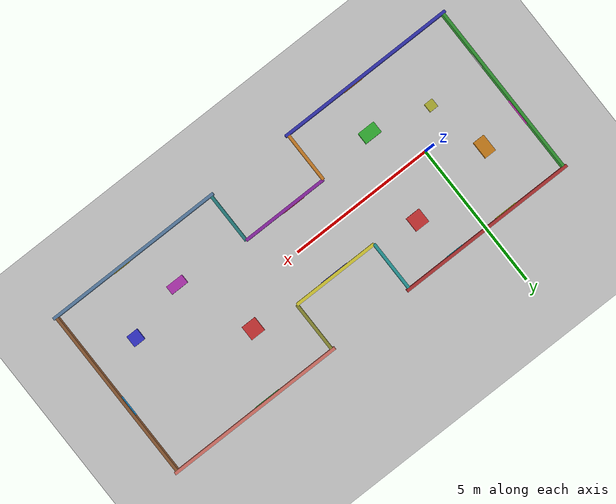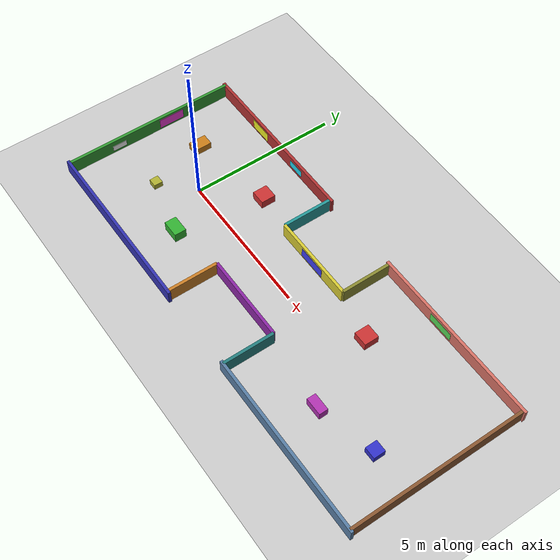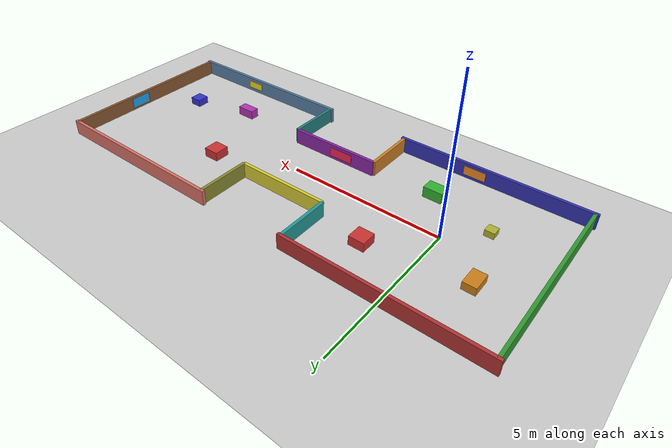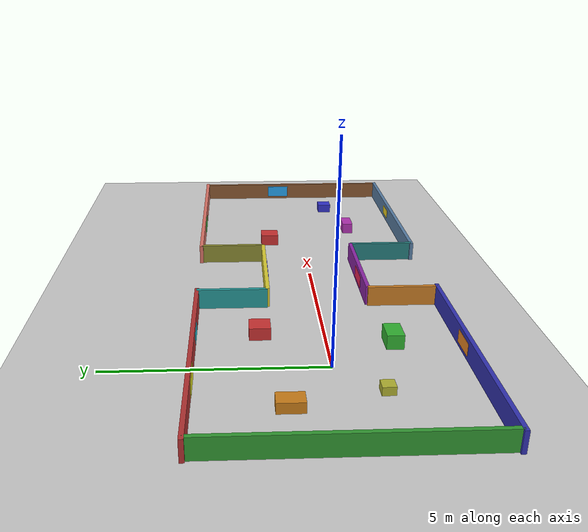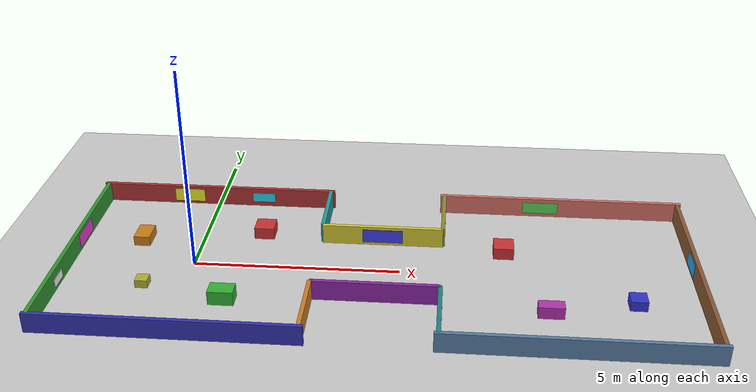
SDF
<?xml version="1.0" ?>
<sdf version="1.6">
  <world name="simple_room">
    <!-- Physics -->
    <physics type="ode">
      <real_time_update_rate>1000.0</real_time_update_rate>
      <max_step_size>0.001</max_step_size>
      <real_time_factor>1</real_time_factor>
    </physics>

    <!-- Lighting -->
    <light name="sun" type="directional">
      <cast_shadows>true</cast_shadows>
      <pose>0 0 10 0 0 0</pose>
      <diffuse>0.8 0.8 0.8 1</diffuse>
      <specular>0.2 0.2 0.2 1</specular>
      <direction>-0.5 0.1 -0.9</direction>
    </light>

    <!-- Secondary lights for camera visibility -->
    <light name="point_light_1" type="point">
      <pose>0 0 3 0 0 0</pose>
      <diffuse>0.5 0.5 0.5 1</diffuse>
      <specular>0.1 0.1 0.1 1</specular>
      <attenuation>
        <range>20</range>
        <constant>0.5</constant>
        <linear>0.01</linear>
        <quadratic>0.001</quadratic>
      </attenuation>
    </light>

    <light name="point_light_2" type="point">
      <pose>9 0 3 0 0 0</pose>
      <diffuse>0.5 0.5 0.5 1</diffuse>
      <specular>0.1 0.1 0.1 1</specular>
      <attenuation>
        <range>20</range>
        <constant>0.5</constant>
        <linear>0.01</linear>
        <quadratic>0.001</quadratic>
      </attenuation>
    </light>

    <!-- Ground Plane -->
    <model name="ground_plane">
      <static>true</static>
      <link name="link">
        <collision name="collision">
          <geometry>
            <plane><normal>0 0 1</normal><size>100 100</size></plane>
          </geometry>
        </collision>
        <visual name="visual">
          <geometry>
            <plane><normal>0 0 1</normal><size>100 100</size></plane>
          </geometry>
          <material><ambient>0.8 0.8 0.8 1</ambient><diffuse>0.8 0.8 0.8 1</diffuse></material>
        </visual>
      </link>
    </model>

    <!-- ==================== ROOM 1 (6x6m) ==================== -->
    <!-- Each wall has a UNIQUE color for ORB-SLAM3 feature detection -->

    <!-- Room 1: North Wall — DARK RED -->
    <model name="r1_north_wall">
      <static>true</static>
      <pose>0 3 0.25 0 0 0</pose>
      <link name="link">
        <collision name="collision">
          <geometry><box><size>6.2 0.1 0.5</size></box></geometry>
        </collision>
        <visual name="visual">
          <geometry><box><size>6.2 0.1 0.5</size></box></geometry>
          <material><ambient>0.6 0.15 0.15 1</ambient><diffuse>0.7 0.2 0.2 1</diffuse></material>
        </visual>
      </link>
    </model>

    <!-- Room 1: South Wall — DARK BLUE -->
    <model name="r1_south_wall">
      <static>true</static>
      <pose>0 -3 0.25 0 0 0</pose>
      <link name="link">
        <collision name="collision">
          <geometry><box><size>6.2 0.1 0.5</size></box></geometry>
        </collision>
        <visual name="visual">
          <geometry><box><size>6.2 0.1 0.5</size></box></geometry>
          <material><ambient>0.15 0.15 0.6 1</ambient><diffuse>0.2 0.2 0.7 1</diffuse></material>
        </visual>
      </link>
    </model>

    <!-- Room 1: West Wall — DARK GREEN -->
    <model name="r1_west_wall">
      <static>true</static>
      <pose>-3 0 0.25 0 0 0</pose>
      <link name="link">
        <collision name="collision">
          <geometry><box><size>0.1 6.0 0.5</size></box></geometry>
        </collision>
        <visual name="visual">
          <geometry><box><size>0.1 6.0 0.5</size></box></geometry>
          <material><ambient>0.15 0.5 0.15 1</ambient><diffuse>0.2 0.6 0.2 1</diffuse></material>
        </visual>
      </link>
    </model>

    <!-- Room 1: East Wall TOP — TEAL -->
    <model name="r1_east_wall_top">
      <static>true</static>
      <pose>3 2.125 0.25 0 0 0</pose>
      <link name="link">
        <collision name="collision">
          <geometry><box><size>0.1 1.75 0.5</size></box></geometry>
        </collision>
        <visual name="visual">
          <geometry><box><size>0.1 1.75 0.5</size></box></geometry>
          <material><ambient>0.1 0.5 0.5 1</ambient><diffuse>0.15 0.6 0.6 1</diffuse></material>
        </visual>
      </link>
    </model>

    <!-- Room 1: East Wall BOTTOM — ORANGE -->
    <model name="r1_east_wall_bottom">
      <static>true</static>
      <pose>3 -2.125 0.25 0 0 0</pose>
      <link name="link">
        <collision name="collision">
          <geometry><box><size>0.1 1.75 0.5</size></box></geometry>
        </collision>
        <visual name="visual">
          <geometry><box><size>0.1 1.75 0.5</size></box></geometry>
          <material><ambient>0.7 0.4 0.1 1</ambient><diffuse>0.8 0.5 0.15 1</diffuse></material>
        </visual>
      </link>
    </model>

    <!-- ==================== CORRIDOR (2.5m wide) ==================== -->

    <!-- Corridor: North Wall — YELLOW -->
    <model name="corridor_north_wall">
      <static>true</static>
      <pose>4.5 1.25 0.25 0 0 0</pose>
      <link name="link">
        <collision name="collision">
          <geometry><box><size>3.0 0.1 0.5</size></box></geometry>
        </collision>
        <visual name="visual">
          <geometry><box><size>3.0 0.1 0.5</size></box></geometry>
          <material><ambient>0.7 0.65 0.1 1</ambient><diffuse>0.85 0.8 0.2 1</diffuse></material>
        </visual>
      </link>
    </model>

    <!-- Corridor: South Wall — PURPLE -->
    <model name="corridor_south_wall">
      <static>true</static>
      <pose>4.5 -1.25 0.25 0 0 0</pose>
      <link name="link">
        <collision name="collision">
          <geometry><box><size>3.0 0.1 0.5</size></box></geometry>
        </collision>
        <visual name="visual">
          <geometry><box><size>3.0 0.1 0.5</size></box></geometry>
          <material><ambient>0.45 0.1 0.55 1</ambient><diffuse>0.55 0.15 0.65 1</diffuse></material>
        </visual>
      </link>
    </model>

    <!-- ==================== ROOM 2 (6x6m) ==================== -->

    <!-- Room 2: North Wall — SALMON -->
    <model name="r2_north_wall">
      <static>true</static>
      <pose>9 3 0.25 0 0 0</pose>
      <link name="link">
        <collision name="collision">
          <geometry><box><size>6.2 0.1 0.5</size></box></geometry>
        </collision>
        <visual name="visual">
          <geometry><box><size>6.2 0.1 0.5</size></box></geometry>
          <material><ambient>0.7 0.35 0.3 1</ambient><diffuse>0.85 0.45 0.4 1</diffuse></material>
        </visual>
      </link>
    </model>

    <!-- Room 2: South Wall — STEEL BLUE -->
    <model name="r2_south_wall">
      <static>true</static>
      <pose>9 -3 0.25 0 0 0</pose>
      <link name="link">
        <collision name="collision">
          <geometry><box><size>6.2 0.1 0.5</size></box></geometry>
        </collision>
        <visual name="visual">
          <geometry><box><size>6.2 0.1 0.5</size></box></geometry>
          <material><ambient>0.25 0.4 0.55 1</ambient><diffuse>0.35 0.5 0.65 1</diffuse></material>
        </visual>
      </link>
    </model>

    <!-- Room 2: East Wall — BROWN -->
    <model name="r2_east_wall">
      <static>true</static>
      <pose>12 0 0.25 0 0 0</pose>
      <link name="link">
        <collision name="collision">
          <geometry><box><size>0.1 6.0 0.5</size></box></geometry>
        </collision>
        <visual name="visual">
          <geometry><box><size>0.1 6.0 0.5</size></box></geometry>
          <material><ambient>0.45 0.3 0.15 1</ambient><diffuse>0.55 0.35 0.2 1</diffuse></material>
        </visual>
      </link>
    </model>

    <!-- Room 2: West Wall TOP — OLIVE -->
    <model name="r2_west_wall_top">
      <static>true</static>
      <pose>6 2.125 0.25 0 0 0</pose>
      <link name="link">
        <collision name="collision">
          <geometry><box><size>0.1 1.75 0.5</size></box></geometry>
        </collision>
        <visual name="visual">
          <geometry><box><size>0.1 1.75 0.5</size></box></geometry>
          <material><ambient>0.45 0.45 0.15 1</ambient><diffuse>0.55 0.55 0.2 1</diffuse></material>
        </visual>
      </link>
    </model>

    <!-- Room 2: West Wall BOTTOM — DARK CYAN -->
    <model name="r2_west_wall_bottom">
      <static>true</static>
      <pose>6 -2.125 0.25 0 0 0</pose>
      <link name="link">
        <collision name="collision">
          <geometry><box><size>0.1 1.75 0.5</size></box></geometry>
        </collision>
        <visual name="visual">
          <geometry><box><size>0.1 1.75 0.5</size></box></geometry>
          <material><ambient>0.1 0.4 0.4 1</ambient><diffuse>0.15 0.5 0.5 1</diffuse></material>
        </visual>
      </link>
    </model>

    <!-- ==================== OBSTACLES (ROOM 1) ==================== -->

    <model name="obs_1">
      <static>true</static>
      <pose>1.5 1.5 0.15 0 0 0</pose>
      <link name="link">
        <collision name="collision">
          <geometry><box><size>0.5 0.5 0.3</size></box></geometry>
        </collision>
        <visual name="visual">
          <geometry><box><size>0.5 0.5 0.3</size></box></geometry>
          <material><ambient>0.8 0.2 0.2 1</ambient><diffuse>0.8 0.2 0.2 1</diffuse></material>
        </visual>
      </link>
    </model>

    <model name="obs_2">
      <static>true</static>
      <pose>-1.5 1.0 0.125 0 0 0</pose>
      <link name="link">
        <collision name="collision">
          <geometry><box><size>0.4 0.6 0.25</size></box></geometry>
        </collision>
        <visual name="visual">
          <geometry><box><size>0.4 0.6 0.25</size></box></geometry>
          <material><ambient>0.8 0.5 0.1 1</ambient><diffuse>0.8 0.5 0.1 1</diffuse></material>
        </visual>
      </link>
    </model>

    <model name="obs_3">
      <static>true</static>
      <pose>1.0 -1.5 0.175 0 0 0</pose>
      <link name="link">
        <collision name="collision">
          <geometry><box><size>0.6 0.4 0.35</size></box></geometry>
        </collision>
        <visual name="visual">
          <geometry><box><size>0.6 0.4 0.35</size></box></geometry>
          <material><ambient>0.2 0.7 0.2 1</ambient><diffuse>0.2 0.7 0.2 1</diffuse></material>
        </visual>
      </link>
    </model>

    <model name="obs_4">
      <static>true</static>
      <pose>-1.0 -1.0 0.1 0 0 0</pose>
      <link name="link">
        <collision name="collision">
          <geometry><box><size>0.3 0.3 0.2</size></box></geometry>
        </collision>
        <visual name="visual">
          <geometry><box><size>0.3 0.3 0.2</size></box></geometry>
          <material><ambient>0.7 0.7 0.2 1</ambient><diffuse>0.7 0.7 0.2 1</diffuse></material>
        </visual>
      </link>
    </model>

    <!-- ==================== OBSTACLES (ROOM 2) ==================== -->

    <model name="obs_5">
      <static>true</static>
      <pose>7.5 1.0 0.15 0 0 0</pose>
      <link name="link">
        <collision name="collision">
          <geometry><box><size>0.5 0.5 0.3</size></box></geometry>
        </collision>
        <visual name="visual">
          <geometry><box><size>0.5 0.5 0.3</size></box></geometry>
          <material><ambient>0.8 0.2 0.2 1</ambient><diffuse>0.8 0.2 0.2 1</diffuse></material>
        </visual>
      </link>
    </model>

    <model name="obs_6">
      <static>true</static>
      <pose>10.5 -1.0 0.125 0 0 0</pose>
      <link name="link">
        <collision name="collision">
          <geometry><box><size>0.4 0.4 0.25</size></box></geometry>
        </collision>
        <visual name="visual">
          <geometry><box><size>0.4 0.4 0.25</size></box></geometry>
          <material><ambient>0.2 0.2 0.8 1</ambient><diffuse>0.2 0.2 0.8 1</diffuse></material>
        </visual>
      </link>
    </model>

    <model name="obs_7">
      <static>true</static>
      <pose>8.5 -1.5 0.15 0 0 0</pose>
      <link name="link">
        <collision name="collision">
          <geometry><box><size>0.6 0.3 0.3</size></box></geometry>
        </collision>
        <visual name="visual">
          <geometry><box><size>0.6 0.3 0.3</size></box></geometry>
          <material><ambient>0.7 0.2 0.7 1</ambient><diffuse>0.7 0.2 0.7 1</diffuse></material>
        </visual>
      </link>
    </model>

    <!-- ==================== VISUAL FEATURE MARKERS ==================== -->
    <!-- Poster panels on walls for ORB-SLAM3 keypoint detection -->

    <model name="poster_r1_n">
      <static>true</static>
      <pose>-0.8 2.94 0.25 0 0 0</pose>
      <link name="link">
        <visual name="visual">
          <geometry><box><size>0.8 0.01 0.35</size></box></geometry>
          <material><ambient>0.9 0.9 0.1 1</ambient><diffuse>0.95 0.95 0.15 1</diffuse></material>
        </visual>
      </link>
    </model>

    <model name="poster_r1_n2">
      <static>true</static>
      <pose>1.2 2.94 0.25 0 0 0</pose>
      <link name="link">
        <visual name="visual">
          <geometry><box><size>0.6 0.01 0.25</size></box></geometry>
          <material><ambient>0.1 0.8 0.9 1</ambient><diffuse>0.15 0.85 0.95 1</diffuse></material>
        </visual>
      </link>
    </model>

    <model name="poster_r1_s">
      <static>true</static>
      <pose>0.5 -2.94 0.25 0 0 0</pose>
      <link name="link">
        <visual name="visual">
          <geometry><box><size>0.7 0.01 0.3</size></box></geometry>
          <material><ambient>0.9 0.5 0.1 1</ambient><diffuse>0.95 0.55 0.15 1</diffuse></material>
        </visual>
      </link>
    </model>

    <model name="poster_r1_w">
      <static>true</static>
      <pose>-2.94 0.8 0.25 0 0 0</pose>
      <link name="link">
        <visual name="visual">
          <geometry><box><size>0.01 0.9 0.35</size></box></geometry>
          <material><ambient>0.9 0.2 0.8 1</ambient><diffuse>0.95 0.25 0.85 1</diffuse></material>
        </visual>
      </link>
    </model>

    <model name="poster_r1_w2">
      <static>true</static>
      <pose>-2.94 -1.2 0.2 0 0 0</pose>
      <link name="link">
        <visual name="visual">
          <geometry><box><size>0.01 0.5 0.2</size></box></geometry>
          <material><ambient>0.95 0.95 0.95 1</ambient><diffuse>0.98 0.98 0.98 1</diffuse></material>
        </visual>
      </link>
    </model>

    <model name="poster_corr_n">
      <static>true</static>
      <pose>4.5 1.19 0.25 0 0 0</pose>
      <link name="link">
        <visual name="visual">
          <geometry><box><size>1.0 0.01 0.35</size></box></geometry>
          <material><ambient>0.2 0.2 0.9 1</ambient><diffuse>0.25 0.25 0.95 1</diffuse></material>
        </visual>
      </link>
    </model>

    <model name="poster_corr_s">
      <static>true</static>
      <pose>4.2 -1.19 0.25 0 0 0</pose>
      <link name="link">
        <visual name="visual">
          <geometry><box><size>0.8 0.01 0.3</size></box></geometry>
          <material><ambient>0.9 0.1 0.3 1</ambient><diffuse>0.95 0.15 0.35 1</diffuse></material>
        </visual>
      </link>
    </model>

    <model name="poster_r2_n">
      <static>true</static>
      <pose>8.5 2.94 0.25 0 0 0</pose>
      <link name="link">
        <visual name="visual">
          <geometry><box><size>0.9 0.01 0.3</size></box></geometry>
          <material><ambient>0.3 0.8 0.3 1</ambient><diffuse>0.35 0.85 0.35 1</diffuse></material>
        </visual>
      </link>
    </model>

    <model name="poster_r2_e">
      <static>true</static>
      <pose>11.94 0.5 0.25 0 0 0</pose>
      <link name="link">
        <visual name="visual">
          <geometry><box><size>0.01 0.7 0.35</size></box></geometry>
          <material><ambient>0.1 0.6 0.9 1</ambient><diffuse>0.15 0.65 0.95 1</diffuse></material>
        </visual>
      </link>
    </model>

    <model name="poster_r2_s">
      <static>true</static>
      <pose>9.5 -2.94 0.25 0 0 0</pose>
      <link name="link">
        <visual name="visual">
          <geometry><box><size>0.6 0.01 0.25</size></box></geometry>
          <material><ambient>0.9 0.8 0.1 1</ambient><diffuse>0.95 0.85 0.15 1</diffuse></material>
        </visual>
      </link>
    </model>

  </world>
</sdf>
